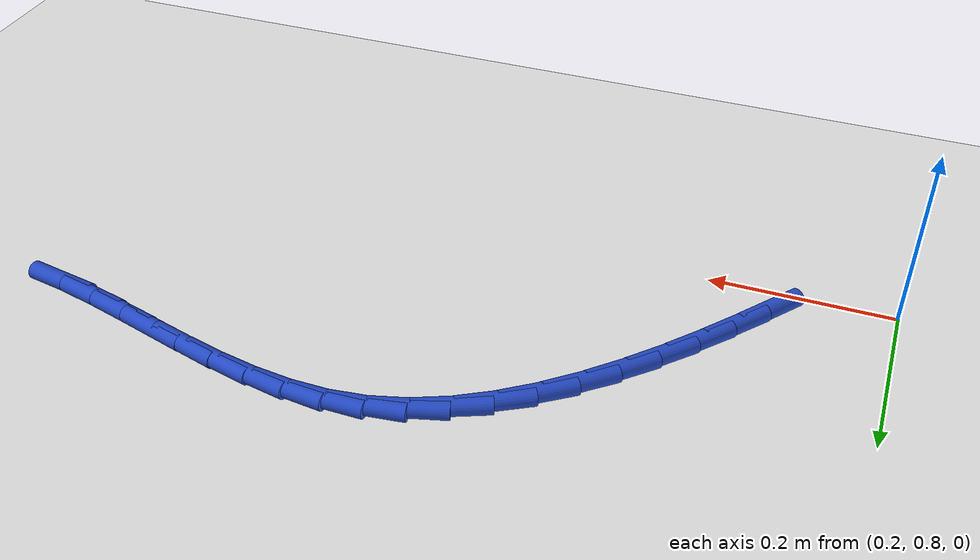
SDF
<sdf version="1.6">
 <world name="default">
  <model name="ground_plane">
   <static>1</static>
   <link name="link">
    <collision name="collision">
     <geometry><plane><normal>0 0 1</normal><size>100 100</size></plane></geometry>
     <surface><friction><ode><mu>100</mu><mu2>50</mu2></ode></friction></surface>
    </collision>
    <visual name="visual">
     <cast_shadows>0</cast_shadows>
     <geometry><plane><normal>0 0 1</normal><size>100 100</size></plane></geometry>
     <material>
      <script><uri>file://media/materials/scripts/gazebo.material</uri><name>Gazebo/WhiteGlow</name></script>
     </material>
    </visual>
   </link>
  </model>
  <model name="line">
   <link name="link_21">
    <pose>0.3282815809186418 0.841777559409946 0.01 0 1.57 0.9218332934378984</pose>
    <collision name="collision">
     <geometry><cylinder><radius>0.01</radius><length>0.08</length></cylinder></geometry>
    </collision>
    <visual name="visual">
     <material>
      <script><name>Gazebo/Blue</name><uri>file://media/materials/scripts/gazebo.material</uri></script>
     </material>
     <geometry><cylinder><radius>0.01</radius><length>0.08</length></cylinder></geometry>
    </visual>
   </link>
   <link name="link_22">
    <pose>0.35657961992224635 0.8790820397451635 0.01 0 1.57 0.8976768743063157</pose>
    <collision name="collision">
     <geometry><cylinder><radius>0.01</radius><length>0.08</length></cylinder></geometry>
    </collision>
    <visual name="visual">
     <material>
      <script><name>Gazebo/Blue</name><uri>file://media/materials/scripts/gazebo.material</uri></script>
     </material>
     <geometry><cylinder><radius>0.01</radius><length>0.08</length></cylinder></geometry>
    </visual>
   </link>
   <link name="link_23">
    <pose>0.38606259419753153 0.9160585102461866 0.01 0 1.57 0.8653561939736665</pose>
    <collision name="collision">
     <geometry><cylinder><radius>0.01</radius><length>0.08</length></cylinder></geometry>
    </collision>
    <visual name="visual">
     <material>
      <script><name>Gazebo/Blue</name><uri>file://media/materials/scripts/gazebo.material</uri></script>
     </material>
     <geometry><cylinder><radius>0.01</radius><length>0.08</length></cylinder></geometry>
    </visual>
   </link>
   <link name="link_24">
    <pose>0.4167231023109562 0.9520606181649928 0.01 0 1.57 0.8238587374466814</pose>
    <collision name="collision">
     <geometry><cylinder><radius>0.01</radius><length>0.08</length></cylinder></geometry>
    </collision>
    <visual name="visual">
     <material>
      <script><name>Gazebo/Blue</name><uri>file://media/materials/scripts/gazebo.material</uri></script>
     </material>
     <geometry><cylinder><radius>0.01</radius><length>0.08</length></cylinder></geometry>
    </visual>
   </link>
   <link name="link_25">
    <pose>0.44855364041929546 0.9864388394828973 0.01 0 1.57 0.7717541167600173</pose>
    <collision name="collision">
     <geometry><cylinder><radius>0.01</radius><length>0.08</length></cylinder></geometry>
    </collision>
    <visual name="visual">
     <material>
      <script><name>Gazebo/Blue</name><uri>file://media/materials/scripts/gazebo.material</uri></script>
     </material>
     <geometry><cylinder><radius>0.01</radius><length>0.08</length></cylinder></geometry>
    </visual>
   </link>
   <link name="link_26">
    <pose>0.48154670467932487 1.0185436501812164 0.01 0 1.57 0.7071402901553359</pose>
    <collision name="collision">
     <geometry><cylinder><radius>0.01</radius><length>0.08</length></cylinder></geometry>
    </collision>
    <visual name="visual">
     <material>
      <script><name>Gazebo/Blue</name><uri>file://media/materials/scripts/gazebo.material</uri></script>
     </material>
     <geometry><cylinder><radius>0.01</radius><length>0.08</length></cylinder></geometry>
    </visual>
   </link>
   <link name="link_27">
    <pose>0.5156947912478198 1.0477255262412646 0.01 0 1.57 0.6276814348441409</pose>
    <collision name="collision">
     <geometry><cylinder><radius>0.01</radius><length>0.08</length></cylinder></geometry>
    </collision>
    <visual name="visual">
     <material>
      <script><name>Gazebo/Blue</name><uri>file://media/materials/scripts/gazebo.material</uri></script>
     </material>
     <geometry><cylinder><radius>0.01</radius><length>0.08</length></cylinder></geometry>
    </visual>
   </link>
   <link name="link_28">
    <pose>0.5509903962815554 1.0733349436443582 0.01 0 1.57 0.5308002408363076</pose>
    <collision name="collision">
     <geometry><cylinder><radius>0.01</radius><length>0.08</length></cylinder></geometry>
    </collision>
    <visual name="visual">
     <material>
      <script><name>Gazebo/Blue</name><uri>file://media/materials/scripts/gazebo.material</uri></script>
     </material>
     <geometry><cylinder><radius>0.01</radius><length>0.08</length></cylinder></geometry>
    </visual>
   </link>
   <link name="link_29">
    <pose>0.5874260159373074 1.0947223783718127 0.01 0 1.57 0.4141935186324031</pose>
    <collision name="collision">
     <geometry><cylinder><radius>0.01</radius><length>0.08</length></cylinder></geometry>
    </collision>
    <visual name="visual">
     <material>
      <script><name>Gazebo/Blue</name><uri>file://media/materials/scripts/gazebo.material</uri></script>
     </material>
     <geometry><cylinder><radius>0.01</radius><length>0.08</length></cylinder></geometry>
    </visual>
   </link>
   <link name="link_30">
    <pose>0.6249941463718506 1.1112383064049427 0.01 0 1.57 0.27685863087886153</pose>
    <collision name="collision">
     <geometry><cylinder><radius>0.01</radius><length>0.08</length></cylinder></geometry>
    </collision>
    <visual name="visual">
     <material>
      <script><name>Gazebo/Blue</name><uri>file://media/materials/scripts/gazebo.material</uri></script>
     </material>
     <geometry><cylinder><radius>0.01</radius><length>0.08</length></cylinder></geometry>
    </visual>
   </link>
   <link name="link_31">
    <pose>0.6636872837419605 1.1222332037250644 0.01 0 1.57 0.12503742717940666</pose>
    <collision name="collision">
     <geometry><cylinder><radius>0.01</radius><length>0.08</length></cylinder></geometry>
    </collision>
    <visual name="visual">
     <material>
      <script><name>Gazebo/Blue</name><uri>file://media/materials/scripts/gazebo.material</uri></script>
     </material>
     <geometry><cylinder><radius>0.01</radius><length>0.08</length></cylinder></geometry>
    </visual>
   </link>
   <link name="link_32">
    <pose>0.7034848335260092 1.1272354833138785 0.01 0 1.57 -0.009682901739637042</pose>
    <collision name="collision">
     <geometry><cylinder><radius>0.01</radius><length>0.08</length></cylinder></geometry>
    </collision>
    <visual name="visual">
     <material>
      <script><name>Gazebo/Blue</name><uri>file://media/materials/scripts/gazebo.material</uri></script>
     </material>
     <geometry><cylinder><radius>0.01</radius><length>0.08</length></cylinder></geometry>
    </visual>
   </link>
   <link name="link_33">
    <pose>0.7442877159498301 1.1268403806645089 0.01 0 1.57 -0.11469258326738725</pose>
    <collision name="collision">
     <geometry><cylinder><radius>0.01</radius><length>0.08</length></cylinder></geometry>
    </collision>
    <visual name="visual">
     <material>
      <script><name>Gazebo/Blue</name><uri>file://media/materials/scripts/gazebo.material</uri></script>
     </material>
     <geometry><cylinder><radius>0.01</radius><length>0.08</length></cylinder></geometry>
    </visual>
   </link>
   <link name="link_34">
    <pose>0.7859677333976002 1.122038919879541 0.01 0 1.57 -0.19127753326670552</pose>
    <collision name="collision">
     <geometry><cylinder><radius>0.01</radius><length>0.08</length></cylinder></geometry>
    </collision>
    <visual name="visual">
     <material>
      <script><name>Gazebo/Blue</name><uri>file://media/materials/scripts/gazebo.material</uri></script>
     </material>
     <geometry><cylinder><radius>0.01</radius><length>0.08</length></cylinder></geometry>
    </visual>
   </link>
   <link name="link_35">
    <pose>0.8283966403385183 1.1138227763530308 0.01 0 1.57 -0.24228257176049395</pose>
    <collision name="collision">
     <geometry><cylinder><radius>0.01</radius><length>0.08</length></cylinder></geometry>
    </collision>
    <visual name="visual">
     <material>
      <script><name>Gazebo/Blue</name><uri>file://media/materials/scripts/gazebo.material</uri></script>
     </material>
     <geometry><cylinder><radius>0.01</radius><length>0.08</length></cylinder></geometry>
    </visual>
   </link>
   <link name="link_36">
    <pose>0.8714461912417848 1.1031836254790341 0.01 0 1.57 -0.27042433900057355</pose>
    <collision name="collision">
     <geometry><cylinder><radius>0.01</radius><length>0.08</length></cylinder></geometry>
    </collision>
    <visual name="visual">
     <material>
      <script><name>Gazebo/Blue</name><uri>file://media/materials/scripts/gazebo.material</uri></script>
     </material>
     <geometry><cylinder><radius>0.01</radius><length>0.08</length></cylinder></geometry>
    </visual>
   </link>
   <link name="link_37">
    <pose>0.9149881405765988 1.091113142651607 0.01 0 1.57 -0.27757386002866985</pose>
    <collision name="collision">
     <geometry><cylinder><radius>0.01</radius><length>0.08</length></cylinder></geometry>
    </collision>
    <visual name="visual">
     <material>
      <script><name>Gazebo/Blue</name><uri>file://media/materials/scripts/gazebo.material</uri></script>
     </material>
     <geometry><cylinder><radius>0.01</radius><length>0.08</length></cylinder></geometry>
    </visual>
   </link>
   <link name="link_38">
    <pose>0.9588942428121603 1.0786030032648062 0.01 0 1.57 -0.26455155073145986</pose>
    <collision name="collision">
     <geometry><cylinder><radius>0.01</radius><length>0.08</length></cylinder></geometry>
    </collision>
    <visual name="visual">
     <material>
      <script><name>Gazebo/Blue</name><uri>file://media/materials/scripts/gazebo.material</uri></script>
     </material>
     <geometry><cylinder><radius>0.01</radius><length>0.08</length></cylinder></geometry>
    </visual>
   </link>
   <link name="link_39">
    <pose>1.0030362524176688 1.066644882712687 0.01 0 1.57 -0.23114931638908956</pose>
    <collision name="collision">
     <geometry><cylinder><radius>0.01</radius><length>0.08</length></cylinder></geometry>
    </collision>
    <visual name="visual">
     <material>
      <script><name>Gazebo/Blue</name><uri>file://media/materials/scripts/gazebo.material</uri></script>
     </material>
     <geometry><cylinder><radius>0.01</radius><length>0.08</length></cylinder></geometry>
    </visual>
   </link>
   <link name="link_40">
    <pose>1.0472859238623238 1.0562304563893061 0.01 0 1.57 -0.17629263517191962</pose>
    <collision name="collision">
     <geometry><cylinder><radius>0.01</radius><length>0.08</length></cylinder></geometry>
    </collision>
    <visual name="visual">
     <material>
      <script><name>Gazebo/Blue</name><uri>file://media/materials/scripts/gazebo.material</uri></script>
     </material>
     <geometry><cylinder><radius>0.01</radius><length>0.08</length></cylinder></geometry>
    </visual>
   </link>
  </model>
 </world>
</sdf>
